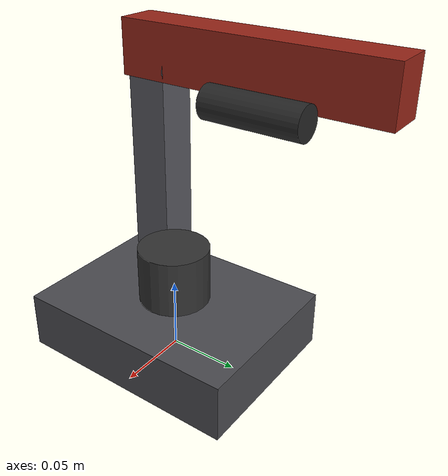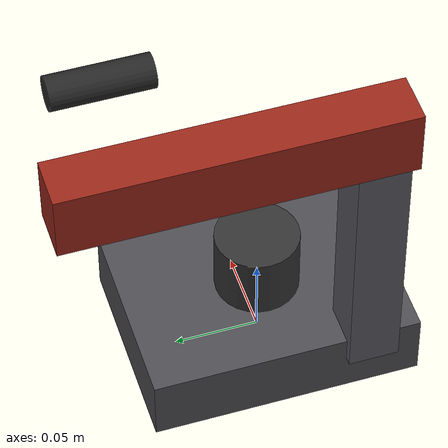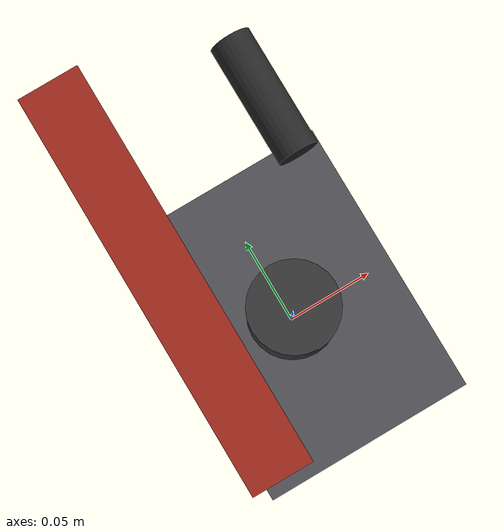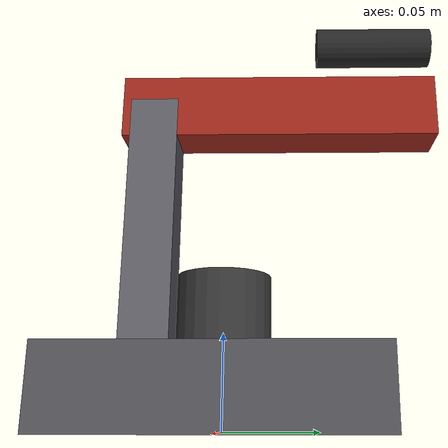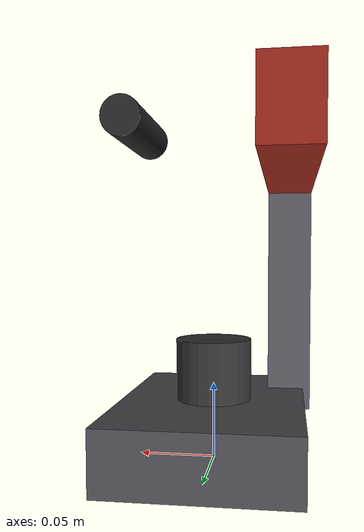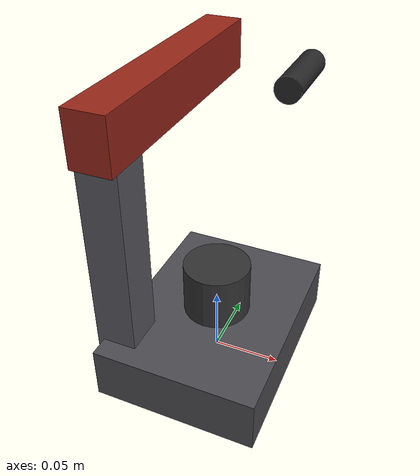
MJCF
<?xml version="1.0" encoding="utf-8"?>
<mujoco model="coin_cell_crimper">
  <compiler angle="radian" autolimits="true"/>
  <default>
    <default class="body"><geom contype="1" conaffinity="1"/></default>
  </default>
  <worldbody>
    <body name="base">
      <geom type="box" size="0.06 0.08 0.02" pos="0 0 0.02" rgba="0.3 0.3 0.32 1" class="body"/>
      <geom type="cylinder" size="0.025 0.02" pos="0 0 0.06" rgba="0.2 0.2 0.2 1" class="body"/>
      <geom type="box" size="0.015 0.015 0.09" pos="-0.05 -0.05 0.115" rgba="0.35 0.35 0.38 1" class="body"/>
      <body name="lever" pos="-0.05 -0.05 0.20">
        <joint name="lever_joint" type="hinge" axis="1 0 0" range="-1.2 0" damping="1.0" frictionloss="0.5"/>
  <geom type="box" size="0.015 0.10 0.02" pos="0 0.08 0" rgba="0.6 0.15 0.1 1" class="body"/>
  <geom name="handle_knob" type="cylinder" size="0.01 0.03" pos="0.08 0.13 0" rgba="0.15 0.15 0.15 1" class="body" quat="0.7071068 0.7071068 0 0"/>
  <site name="grasp_site" pos="0.08 0.13 0" size="0.005" rgba="1 0 0 1" group="4"/>
      </body>
    </body>
  </worldbody>
</mujoco>
